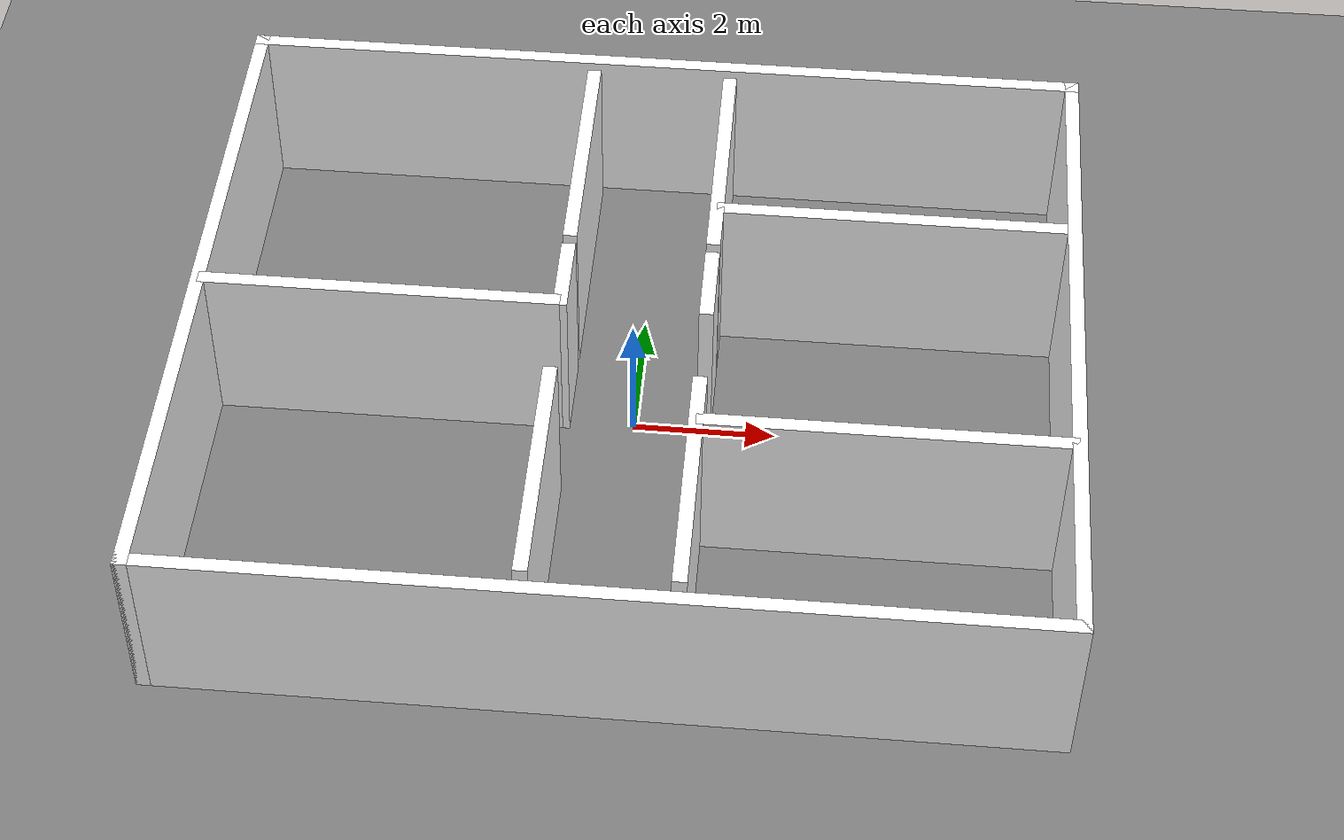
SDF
<?xml version="1.0" ?>
<sdf version="1.6">
  <world name="five_rooms_corridor">

    <include>
      <uri>model://sun</uri>
    </include>

    <!-- Серый пол -->
    <model name="ground_plane">
      <static>true</static>
      <link name="link">
        <collision name="collision">
          <geometry><plane><normal>0 0 1</normal><size>100 100</size></plane></geometry>
        </collision>
        <visual name="visual">
          <geometry><plane><normal>0 0 1</normal><size>100 100</size></plane></geometry>
          <material><ambient>0.5 0.5 0.5 1</ambient><diffuse>0.5 0.5 0.5 1</diffuse></material>
        </visual>
      </link>
    </model>

    <!-- Здание -->
    <model name="building">
<?xml version="1.0" ?>
<sdf version="1.6">
  <world name="five_rooms_corridor">
    <include>
      <uri>model://sun</uri>
    </include>

    <!-- Пол (серая плоскость) -->
    <model name="ground_plane">
      <static>true</static>
      <link name="link">
        <collision name="collision">
          <geometry><plane><normal>0 0 1</normal><size>100 100</size></plane></geometry>
        </collision>
        <visual name="visual">
          <geometry><plane><normal>0 0 1</normal><size>100 100</size></plane></geometry>
          <material><ambient>0.5 0.5 0.5 1</ambient><diffuse>0.5 0.5 0.5 1</diffuse></material>
        </visual>
      </link>
    </model>

    <!-- Здание -->
    <model name="building">
      <static>true</static>

      <!-- Внешние стены (белые) -->
      <link name="wall_back"><pose>0 -5 1.25 0 0 0</pose><visual><geometry><box><size>12.2 0.2 2.5</size></box></geometry><material><ambient>1 1 1 1</ambient></material></visual><collision><geometry><box><size>12.2 0.2 2.5</size></box></geometry></collision></link>
      <link name="wall_front"><pose>0 5 1.25 0 0 0</pose><visual><geometry><box><size>12.2 0.2 2.5</size></box></geometry><material><ambient>1 1 1 1</ambient></material></visual><collision><geometry><box><size>12.2 0.2 2.5</size></box></geometry></collision></link>
      <link name="wall_left"><pose>-6 0 1.25 0 0 0</pose><visual><geometry><box><size>0.2 10.2 2.5</size></box></geometry><material><ambient>1 1 1 1</ambient></material></visual><collision><geometry><box><size>0.2 10.2 2.5</size></box></geometry></collision></link>
      <link name="wall_right"><pose>6 0 1.25 0 0 0</pose><visual><geometry><box><size>0.2 10.2 2.5</size></box></geometry><material><ambient>1 1 1 1</ambient></material></visual><collision><geometry><box><size>0.2 10.2 2.5</size></box></geometry></collision></link>

      <!-- Разделительные стены между комнатами -->
      <link name="left_divider"><pose>-3.5 0 1.25 0 0 0</pose><visual><geometry><box><size>5 0.2 2.5</size></box></geometry><material><ambient>1 1 1 1</ambient></material></visual><collision><geometry><box><size>5 0.2 2.5</size></box></geometry></collision></link>
      <link name="right_divider_top"><pose>3.5 2 1.25 0 0 0</pose><visual><geometry><box><size>5 0.2 2.5</size></box></geometry><material><ambient>1 1 1 1</ambient></material></visual><collision><geometry><box><size>5 0.2 2.5</size></box></geometry></collision></link>
      <link name="right_divider_bottom"><pose>3.5 -2 1.25 0 0 0</pose><visual><geometry><box><size>5 0.2 2.5</size></box></geometry><material><ambient>1 1 1 1</ambient></material></visual><collision><geometry><box><size>5 0.2 2.5</size></box></geometry></collision></link>

      <!-- Стены коридора с проёмами -->
      <!-- Левая стена (три сегмента, между ними проёмы) -->
      <link name="corr_left_top"><pose>-1 3 1.25 0 0 0</pose><visual><geometry><box><size>0.2 3.5 2.5</size></box></geometry><material><ambient>1 1 1 1</ambient></material></visual><collision><geometry><box><size>0.2 3.5 2.5</size></box></geometry></collision></link>
      <link name="corr_left_mid"><pose>-1 0.5 1.25 0 0 0</pose><visual><geometry><box><size>0.2 1.2 2.5</size></box></geometry><material><ambient>1 1 1 1</ambient></material></visual><collision><geometry><box><size>0.2 1.2 2.5</size></box></geometry></collision></link>
      <link name="corr_left_bottom"><pose>-1 -3 1.25 0 0 0</pose><visual><geometry><box><size>0.2 3.5 2.5</size></box></geometry><material><ambient>1 1 1 1</ambient></material></visual><collision><geometry><box><size>0.2 3.5 2.5</size></box></geometry></collision></link>

      <!-- Правая стена (три сегмента) -->
      <link name="corr_right_top"><pose>1 3 1.25 0 0 0</pose><visual><geometry><box><size>0.2 3.5 2.5</size></box></geometry><material><ambient>1 1 1 1</ambient></material></visual><collision><geometry><box><size>0.2 3.5 2.5</size></box></geometry></collision></link>
      <link name="corr_right_mid"><pose>1 0.5 1.25 0 0 0</pose><visual><geometry><box><size>0.2 1.2 2.5</size></box></geometry><material><ambient>1 1 1 1</ambient></material></visual><collision><geometry><box><size>0.2 1.2 2.5</size></box></geometry></collision></link>
      <link name="corr_right_bottom"><pose>1 -3 1.25 0 0 0</pose><visual><geometry><box><size>0.2 3.5 2.5</size></box></geometry><material><ambient>1 1 1 1</ambient></material></visual><collision><geometry><box><size>0.2 3.5 2.5</size></box></geometry></collision></link>
    </model>
  </world>
</sdf>      <static>true</static>

      <!-- Внешние стены (белые) -->
      <link name="wall_back"><pose>0 -5 1.25 0 0 0</pose><visual><geometry><box><size>12.2 0.2 2.5</size></box></geometry><material><ambient>1 1 1 1</ambient></material></visual><collision><geometry><box><size>12.2 0.2 2.5</size></box></geometry></collision></link>
      <link name="wall_front"><pose>0 5 1.25 0 0 0</pose><visual><geometry><box><size>12.2 0.2 2.5</size></box></geometry><material><ambient>1 1 1 1</ambient></material></visual><collision><geometry><box><size>12.2 0.2 2.5</size></box></geometry></collision></link>
      <link name="wall_left"><pose>-6 0 1.25 0 0 0</pose><visual><geometry><box><size>0.2 10.2 2.5</size></box></geometry><material><ambient>1 1 1 1</ambient></material></visual><collision><geometry><box><size>0.2 10.2 2.5</size></box></geometry></collision></link>
      <link name="wall_right"><pose>6 0 1.25 0 0 0</pose><visual><geometry><box><size>0.2 10.2 2.5</size></box></geometry><material><ambient>1 1 1 1</ambient></material></visual><collision><geometry><box><size>0.2 10.2 2.5</size></box></geometry></collision></link>

      <!-- Разделительные стены между комнатами (белые) -->
      <link name="left_divider"><pose>-3.5 0 1.25 0 0 0</pose><visual><geometry><box><size>5 0.2 2.5</size></box></geometry><material><ambient>1 1 1 1</ambient></material></visual><collision><geometry><box><size>5 0.2 2.5</size></box></geometry></collision></link>
      <link name="right_divider_top"><pose>3.5 2 1.25 0 0 0</pose><visual><geometry><box><size>5 0.2 2.5</size></box></geometry><material><ambient>1 1 1 1</ambient></material></visual><collision><geometry><box><size>5 0.2 2.5</size></box></geometry></collision></link>
      <link name="right_divider_bottom"><pose>3.5 -2 1.25 0 0 0</pose><visual><geometry><box><size>5 0.2 2.5</size></box></geometry><material><ambient>1 1 1 1</ambient></material></visual><collision><geometry><box><size>5 0.2 2.5</size></box></geometry></collision></link>

      <!-- Стены коридора с проёмами (белые) -->
      <!-- Левая стена коридора: три сегмента (верхний, средний, нижний) -->
      <link name="corr_left_top"><pose>-1 3 1.25 0 0 0</pose><visual><geometry><box><size>0.2 3.5 2.5</size></box></geometry><material><ambient>1 1 1 1</ambient></material></visual><collision><geometry><box><size>0.2 3.5 2.5</size></box></geometry></collision></link>
      <link name="corr_left_mid"><pose>-1 0.5 1.25 0 0 0</pose><visual><geometry><box><size>0.2 1.2 2.5</size></box></geometry><material><ambient>1 1 1 1</ambient></material></visual><collision><geometry><box><size>0.2 1.2 2.5</size></box></geometry></collision></link>
      <link name="corr_left_bottom"><pose>-1 -3 1.25 0 0 0</pose><visual><geometry><box><size>0.2 3.5 2.5</size></box></geometry><material><ambient>1 1 1 1</ambient></material></visual><collision><geometry><box><size>0.2 3.5 2.5</size></box></geometry></collision></link>

      <!-- Правая стена коридора: три сегмента (верхний, средний, нижний) -->
      <link name="corr_right_top"><pose>1 3 1.25 0 0 0</pose><visual><geometry><box><size>0.2 3.5 2.5</size></box></geometry><material><ambient>1 1 1 1</ambient></material></visual><collision><geometry><box><size>0.2 3.5 2.5</size></box></geometry></collision></link>
      <link name="corr_right_mid"><pose>1 0.5 1.25 0 0 0</pose><visual><geometry><box><size>0.2 1.2 2.5</size></box></geometry><material><ambient>1 1 1 1</ambient></material></visual><collision><geometry><box><size>0.2 1.2 2.5</size></box></geometry></collision></link>
      <link name="corr_right_bottom"><pose>1 -3 1.25 0 0 0</pose><visual><geometry><box><size>0.2 3.5 2.5</size></box></geometry><material><ambient>1 1 1 1</ambient></material></visual><collision><geometry><box><size>0.2 3.5 2.5</size></box></geometry></collision></link>

    </model>
  </world>
</sdf>
